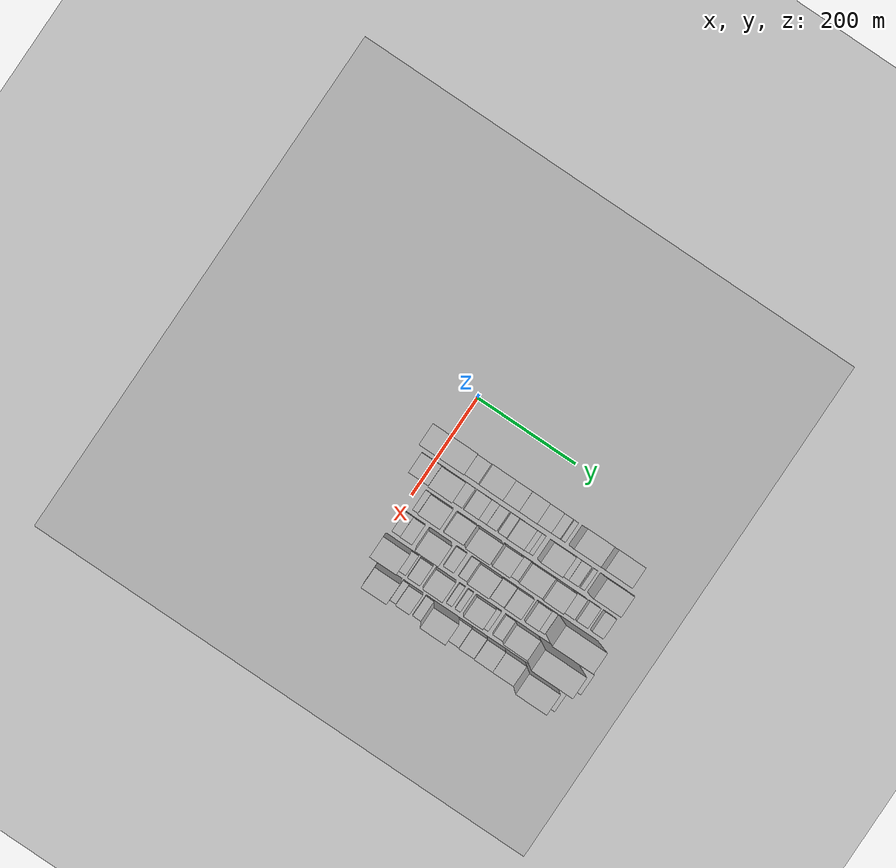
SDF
<sdf version="1.6">
 <world name="default">
  <include><name>ground_plane_1</name><uri>model://HANNAS_ground_plane</uri></include>
  <include>
   <name>ground_plane_2</name>
   <uri>model://HANNAS_ground_plane</uri>
   <pose>100 0 0  0 0 0</pose>
  </include>
  <model name="building_21">
   <static>1</static>
   <pose>100.0000 7.7180 0 0.000000 0.000000 0.000000</pose>
   <link name="link">
    <pose>0 0 112.50 0 0 0</pose>
    <collision name="collision"><geometry><box><size>40.0000 85.6436 225.0000</size></box></geometry></collision>
    <visual name="visual">
     <cast_shadows>0</cast_shadows>
     <geometry><box><size>40.0000 85.6436 225.0000</size></box></geometry>
     <material>
      <script>
       <uri>model://HANNAS_wall/materials/scripts</uri>
       <uri>model://HANNAS_wall/materials/textures</uri>
       <name>vrc/HANNAS_wall</name>
      </script>
     </material>
    </visual>
   </link>
  </model>
  <model name="building_22">
   <static>1</static>
   <pose>100.0000 67.5564 0 0.000000 0.000000 0.000000</pose>
   <link name="link">
    <pose>0 0 27.00 0 0 0</pose>
    <collision name="collision"><geometry><box><size>40.0000 28.0332 54.0000</size></box></geometry></collision>
    <visual name="visual">
     <cast_shadows>0</cast_shadows>
     <geometry><box><size>40.0000 28.0332 54.0000</size></box></geometry>
     <material>
      <script>
       <uri>model://HANNAS_wall/materials/scripts</uri>
       <uri>model://HANNAS_wall/materials/textures</uri>
       <name>vrc/HANNAS_wall</name>
      </script>
     </material>
    </visual>
   </link>
  </model>
  <model name="building_23">
   <static>1</static>
   <pose>100.0000 104.6432 0 0.000000 0.000000 0.000000</pose>
   <link name="link">
    <pose>0 0 67.50 0 0 0</pose>
    <collision name="collision"><geometry><box><size>40.0000 46.1405 135.0000</size></box></geometry></collision>
    <visual name="visual">
     <cast_shadows>0</cast_shadows>
     <geometry><box><size>40.0000 46.1405 135.0000</size></box></geometry>
     <material>
      <script>
       <uri>model://HANNAS_wall/materials/scripts</uri>
       <uri>model://HANNAS_wall/materials/textures</uri>
       <name>vrc/HANNAS_wall</name>
      </script>
     </material>
    </visual>
   </link>
  </model>
  <model name="building_24">
   <static>1</static>
   <pose>100.0000 144.3165 0 0.000000 0.000000 0.000000</pose>
   <link name="link">
    <pose>0 0 54.00 0 0 0</pose>
    <collision name="collision"><geometry><box><size>40.0000 33.2061 108.0000</size></box></geometry></collision>
    <visual name="visual">
     <cast_shadows>0</cast_shadows>
     <geometry><box><size>40.0000 33.2061 108.0000</size></box></geometry>
     <material>
      <script>
       <uri>model://HANNAS_wall/materials/scripts</uri>
       <uri>model://HANNAS_wall/materials/textures</uri>
       <name>vrc/HANNAS_wall</name>
      </script>
     </material>
    </visual>
   </link>
  </model>
  <model name="building_25">
   <static>1</static>
   <pose>100.0000 178.6561 0 0.000000 0.000000 0.000000</pose>
   <link name="link">
    <pose>0 0 55.50 0 0 0</pose>
    <collision name="collision"><geometry><box><size>40.0000 35.4731 111.0000</size></box></geometry></collision>
    <visual name="visual">
     <cast_shadows>0</cast_shadows>
     <geometry><box><size>40.0000 35.4731 111.0000</size></box></geometry>
     <material>
      <script>
       <uri>model://HANNAS_wall/materials/scripts</uri>
       <uri>model://HANNAS_wall/materials/textures</uri>
       <name>vrc/HANNAS_wall</name>
      </script>
     </material>
    </visual>
   </link>
  </model>
  <model name="building_26">
   <static>1</static>
   <pose>100.0000 212.2045 0 0.000000 0.000000 0.000000</pose>
   <link name="link">
    <pose>0 0 30.00 0 0 0</pose>
    <collision name="collision"><geometry><box><size>40.0000 31.6237 60.0000</size></box></geometry></collision>
    <visual name="visual">
     <cast_shadows>0</cast_shadows>
     <geometry><box><size>40.0000 31.6237 60.0000</size></box></geometry>
     <material>
      <script>
       <uri>model://HANNAS_wall/materials/scripts</uri>
       <uri>model://HANNAS_wall/materials/textures</uri>
       <name>vrc/HANNAS_wall</name>
      </script>
     </material>
    </visual>
   </link>
  </model>
  <model name="building_27">
   <static>1</static>
   <pose>100.0000 237.7429 0 0.000000 0.000000 0.000000</pose>
   <link name="link">
    <pose>0 0 18.00 0 0 0</pose>
    <collision name="collision"><geometry><box><size>40.0000 19.4531 36.0000</size></box></geometry></collision>
    <visual name="visual">
     <cast_shadows>0</cast_shadows>
     <geometry><box><size>40.0000 19.4531 36.0000</size></box></geometry>
     <material>
      <script>
       <uri>model://HANNAS_wall/materials/scripts</uri>
       <uri>model://HANNAS_wall/materials/textures</uri>
       <name>vrc/HANNAS_wall</name>
      </script>
     </material>
    </visual>
   </link>
  </model>
  <model name="building_28">
   <static>1</static>
   <pose>100.0000 254.9642 0 0.000000 0.000000 0.000000</pose>
   <link name="link">
    <pose>0 0 9.00 0 0 0</pose>
    <collision name="collision"><geometry><box><size>40.0000 8.9894 18.0000</size></box></geometry></collision>
    <visual name="visual">
     <cast_shadows>0</cast_shadows>
     <geometry><box><size>40.0000 8.9894 18.0000</size></box></geometry>
     <material>
      <script>
       <uri>model://HANNAS_wall/materials/scripts</uri>
       <uri>model://HANNAS_wall/materials/textures</uri>
       <name>vrc/HANNAS_wall</name>
      </script>
     </material>
    </visual>
   </link>
  </model>
  <model name="building_29">
   <static>1</static>
   <pose>100.0000 293.9010 0 0.000000 0.000000 0.000000</pose>
   <link name="link">
    <pose>0 0 67.50 0 0 0</pose>
    <collision name="collision"><geometry><box><size>40.0000 52.8842 135.0000</size></box></geometry></collision>
    <visual name="visual">
     <cast_shadows>0</cast_shadows>
     <geometry><box><size>40.0000 52.8842 135.0000</size></box></geometry>
     <material>
      <script>
       <uri>model://HANNAS_wall/materials/scripts</uri>
       <uri>model://HANNAS_wall/materials/textures</uri>
       <name>vrc/HANNAS_wall</name>
      </script>
     </material>
    </visual>
   </link>
  </model>
  <model name="building_30">
   <static>1</static>
   <pose>100.0000 355.6914 0 0.000000 0.000000 0.000000</pose>
   <link name="link">
    <pose>0 0 66.00 0 0 0</pose>
    <collision name="collision"><geometry><box><size>40.0000 52.6967 132.0000</size></box></geometry></collision>
    <visual name="visual">
     <cast_shadows>0</cast_shadows>
     <geometry><box><size>40.0000 52.6967 132.0000</size></box></geometry>
     <material>
      <script>
       <uri>model://HANNAS_wall/materials/scripts</uri>
       <uri>model://HANNAS_wall/materials/textures</uri>
       <name>vrc/HANNAS_wall</name>
      </script>
     </material>
    </visual>
   </link>
  </model>
  <model name="building_66">
   <static>1</static>
   <pose>149.0000 -5.5144 0 0.000000 0.000000 0.000000</pose>
   <link name="link">
    <pose>0 0 36.00 0 0 0</pose>
    <collision name="collision"><geometry><box><size>40.0000 39.9262 72.0000</size></box></geometry></collision>
    <visual name="visual">
     <cast_shadows>0</cast_shadows>
     <geometry><box><size>40.0000 39.9262 72.0000</size></box></geometry>
     <material>
      <script>
       <uri>model://HANNAS_wall/materials/scripts</uri>
       <uri>model://HANNAS_wall/materials/textures</uri>
       <name>vrc/HANNAS_wall</name>
      </script>
     </material>
    </visual>
   </link>
  </model>
  <model name="building_67">
   <static>1</static>
   <pose>149.0000 37.9203 0 0.000000 0.000000 0.000000</pose>
   <link name="link">
    <pose>0 0 73.50 0 0 0</pose>
    <collision name="collision"><geometry><box><size>40.0000 46.9433 147.0000</size></box></geometry></collision>
    <visual name="visual">
     <cast_shadows>0</cast_shadows>
     <geometry><box><size>40.0000 46.9433 147.0000</size></box></geometry>
     <material>
      <script>
       <uri>model://HANNAS_wall/materials/scripts</uri>
       <uri>model://HANNAS_wall/materials/textures</uri>
       <name>vrc/HANNAS_wall</name>
      </script>
     </material>
    </visual>
   </link>
  </model>
  <model name="building_68">
   <static>1</static>
   <pose>149.0000 71.8959 0 0.000000 0.000000 0.000000</pose>
   <link name="link">
    <pose>0 0 19.50 0 0 0</pose>
    <collision name="collision"><geometry><box><size>40.0000 21.0079 39.0000</size></box></geometry></collision>
    <visual name="visual">
     <cast_shadows>0</cast_shadows>
     <geometry><box><size>40.0000 21.0079 39.0000</size></box></geometry>
     <material>
      <script>
       <uri>model://HANNAS_wall/materials/scripts</uri>
       <uri>model://HANNAS_wall/materials/textures</uri>
       <name>vrc/HANNAS_wall</name>
      </script>
     </material>
    </visual>
   </link>
  </model>
  <model name="building_69">
   <static>1</static>
   <pose>149.0000 100.2830 0 0.000000 0.000000 0.000000</pose>
   <link name="link">
    <pose>0 0 27.00 0 0 0</pose>
    <collision name="collision"><geometry><box><size>40.0000 29.7663 54.0000</size></box></geometry></collision>
    <visual name="visual">
     <cast_shadows>0</cast_shadows>
     <geometry><box><size>40.0000 29.7663 54.0000</size></box></geometry>
     <material>
      <script>
       <uri>model://HANNAS_wall/materials/scripts</uri>
       <uri>model://HANNAS_wall/materials/textures</uri>
       <name>vrc/HANNAS_wall</name>
      </script>
     </material>
    </visual>
   </link>
  </model>
  <model name="building_70">
   <static>1</static>
   <pose>149.0000 123.4607 0 0.000000 0.000000 0.000000</pose>
   <link name="link">
    <pose>0 0 16.50 0 0 0</pose>
    <collision name="collision"><geometry><box><size>40.0000 16.5891 33.0000</size></box></geometry></collision>
    <visual name="visual">
     <cast_shadows>0</cast_shadows>
     <geometry><box><size>40.0000 16.5891 33.0000</size></box></geometry>
     <material>
      <script>
       <uri>model://HANNAS_wall/materials/scripts</uri>
       <uri>model://HANNAS_wall/materials/textures</uri>
       <name>vrc/HANNAS_wall</name>
      </script>
     </material>
    </visual>
   </link>
  </model>
  <model name="building_71">
   <static>1</static>
   <pose>149.0000 141.8349 0 0.000000 0.000000 0.000000</pose>
   <link name="link">
    <pose>0 0 18.00 0 0 0</pose>
    <collision name="collision"><geometry><box><size>40.0000 20.1593 36.0000</size></box></geometry></collision>
    <visual name="visual">
     <cast_shadows>0</cast_shadows>
     <geometry><box><size>40.0000 20.1593 36.0000</size></box></geometry>
     <material>
      <script>
       <uri>model://HANNAS_wall/materials/scripts</uri>
       <uri>model://HANNAS_wall/materials/textures</uri>
       <name>vrc/HANNAS_wall</name>
      </script>
     </material>
    </visual>
   </link>
  </model>
  <model name="building_72">
   <static>1</static>
   <pose>149.0000 163.6154 0 0.000000 0.000000 0.000000</pose>
   <link name="link">
    <pose>0 0 16.50 0 0 0</pose>
    <collision name="collision"><geometry><box><size>40.0000 17.4017 33.0000</size></box></geometry></collision>
    <visual name="visual">
     <cast_shadows>0</cast_shadows>
     <geometry><box><size>40.0000 17.4017 33.0000</size></box></geometry>
     <material>
      <script>
       <uri>model://HANNAS_wall/materials/scripts</uri>
       <uri>model://HANNAS_wall/materials/textures</uri>
       <name>vrc/HANNAS_wall</name>
      </script>
     </material>
    </visual>
   </link>
  </model>
  <model name="building_73">
   <static>1</static>
   <pose>149.0000 189.3897 0 0.000000 0.000000 0.000000</pose>
   <link name="link">
    <pose>0 0 28.50 0 0 0</pose>
    <collision name="collision"><geometry><box><size>40.0000 34.1471 57.0000</size></box></geometry></collision>
    <visual name="visual">
     <cast_shadows>0</cast_shadows>
     <geometry><box><size>40.0000 34.1471 57.0000</size></box></geometry>
     <material>
      <script>
       <uri>model://HANNAS_wall/materials/scripts</uri>
       <uri>model://HANNAS_wall/materials/textures</uri>
       <name>vrc/HANNAS_wall</name>
      </script>
     </material>
    </visual>
   </link>
  </model>
  <model name="building_74">
   <static>1</static>
   <pose>149.0000 212.2500 0 0.000000 0.000000 0.000000</pose>
   <link name="link">
    <pose>0 0 13.50 0 0 0</pose>
    <collision name="collision"><geometry><box><size>40.0000 11.5734 27.0000</size></box></geometry></collision>
    <visual name="visual">
     <cast_shadows>0</cast_shadows>
     <geometry><box><size>40.0000 11.5734 27.0000</size></box></geometry>
     <material>
      <script>
       <uri>model://HANNAS_wall/materials/scripts</uri>
       <uri>model://HANNAS_wall/materials/textures</uri>
       <name>vrc/HANNAS_wall</name>
      </script>
     </material>
    </visual>
   </link>
  </model>
  <model name="building_75">
   <static>1</static>
   <pose>149.0000 222.2428 0 0.000000 0.000000 0.000000</pose>
   <link name="link">
    <pose>0 0 9.00 0 0 0</pose>
    <collision name="collision"><geometry><box><size>40.0000 8.4123 18.0000</size></box></geometry></collision>
    <visual name="visual">
     <cast_shadows>0</cast_shadows>
     <geometry><box><size>40.0000 8.4123 18.0000</size></box></geometry>
     <material>
      <script>
       <uri>model://HANNAS_wall/materials/scripts</uri>
       <uri>model://HANNAS_wall/materials/textures</uri>
       <name>vrc/HANNAS_wall</name>
      </script>
     </material>
    </visual>
   </link>
  </model>
  <model name="building_76">
   <static>1</static>
   <pose>149.0000 258.2133 0 0.000000 0.000000 0.000000</pose>
   <link name="link">
    <pose>0 0 58.50 0 0 0</pose>
    <collision name="collision"><geometry><box><size>40.0000 43.5285 117.0000</size></box></geometry></collision>
    <visual name="visual">
     <cast_shadows>0</cast_shadows>
     <geometry><box><size>40.0000 43.5285 117.0000</size></box></geometry>
     <material>
      <script>
       <uri>model://HANNAS_wall/materials/scripts</uri>
       <uri>model://HANNAS_wall/materials/textures</uri>
       <name>vrc/HANNAS_wall</name>
      </script>
     </material>
    </visual>
   </link>
  </model>
  <model name="building_77">
   <static>1</static>
   <pose>149.0000 288.9747 0 0.000000 0.000000 0.000000</pose>
   <link name="link">
    <pose>0 0 16.50 0 0 0</pose>
    <collision name="collision"><geometry><box><size>40.0000 17.9943 33.0000</size></box></geometry></collision>
    <visual name="visual">
     <cast_shadows>0</cast_shadows>
     <geometry><box><size>40.0000 17.9943 33.0000</size></box></geometry>
     <material>
      <script>
       <uri>model://HANNAS_wall/materials/scripts</uri>
       <uri>model://HANNAS_wall/materials/textures</uri>
       <name>vrc/HANNAS_wall</name>
      </script>
     </material>
    </visual>
   </link>
  </model>
  <model name="building_78">
   <static>1</static>
   <pose>149.0000 307.7852 0 0.000000 0.000000 0.000000</pose>
   <link name="link">
    <pose>0 0 18.00 0 0 0</pose>
    <collision name="collision"><geometry><box><size>40.0000 19.6269 36.0000</size></box></geometry></collision>
    <visual name="visual">
     <cast_shadows>0</cast_shadows>
     <geometry><box><size>40.0000 19.6269 36.0000</size></box></geometry>
     <material>
      <script>
       <uri>model://HANNAS_wall/materials/scripts</uri>
       <uri>model://HANNAS_wall/materials/textures</uri>
       <name>vrc/HANNAS_wall</name>
      </script>
     </material>
    </visual>
   </link>
  </model>
  <model name="building_79">
   <static>1</static>
   <pose>149.0000 326.9042 0 0.000000 0.000000 0.000000</pose>
   <link name="link">
    <pose>0 0 10.50 0 0 0</pose>
    <collision name="collision"><geometry><box><size>40.0000 8.6111 21.0000</size></box></geometry></collision>
    <visual name="visual">
     <cast_shadows>0</cast_shadows>
     <geometry><box><size>40.0000 8.6111 21.0000</size></box></geometry>
     <material>
      <script>
       <uri>model://HANNAS_wall/materials/scripts</uri>
       <uri>model://HANNAS_wall/materials/textures</uri>
       <name>vrc/HANNAS_wall</name>
      </script>
     </material>
    </visual>
   </link>
  </model>
  <model name="building_80">
   <static>1</static>
   <pose>149.0000 364.9617 0 0.000000 0.000000 0.000000</pose>
   <link name="link">
    <pose>0 0 72.00 0 0 0</pose>
    <collision name="collision"><geometry><box><size>40.0000 53.5039 144.0000</size></box></geometry></collision>
    <visual name="visual">
     <cast_shadows>0</cast_shadows>
     <geometry><box><size>40.0000 53.5039 144.0000</size></box></geometry>
     <material>
      <script>
       <uri>model://HANNAS_wall/materials/scripts</uri>
       <uri>model://HANNAS_wall/materials/textures</uri>
       <name>vrc/HANNAS_wall</name>
      </script>
     </material>
    </visual>
   </link>
  </model>
  <model name="building_81">
   <static>1</static>
   <pose>149.0000 400.6756 0 0.000000 0.000000 0.000000</pose>
   <link name="link">
    <pose>0 0 10.50 0 0 0</pose>
    <collision name="collision"><geometry><box><size>40.0000 9.9239 21.0000</size></box></geometry></collision>
    <visual name="visual">
     <cast_shadows>0</cast_shadows>
     <geometry><box><size>40.0000 9.9239 21.0000</size></box></geometry>
     <material>
      <script>
       <uri>model://HANNAS_wall/materials/scripts</uri>
       <uri>model://HANNAS_wall/materials/textures</uri>
       <name>vrc/HANNAS_wall</name>
      </script>
     </material>
    </visual>
   </link>
  </model>
  <model name="building_116">
   <static>1</static>
   <pose>198.0000 20.4674 0 0.000000 0.000000 0.000000</pose>
   <link name="link">
    <pose>0 0 12.00 0 0 0</pose>
    <collision name="collision"><geometry><box><size>40.0000 11.0760 24.0000</size></box></geometry></collision>
    <visual name="visual">
     <cast_shadows>0</cast_shadows>
     <geometry><box><size>40.0000 11.0760 24.0000</size></box></geometry>
     <material>
      <script>
       <uri>model://HANNAS_wall/materials/scripts</uri>
       <uri>model://HANNAS_wall/materials/textures</uri>
       <name>vrc/HANNAS_wall</name>
      </script>
     </material>
    </visual>
   </link>
  </model>
  <model name="building_117">
   <static>1</static>
   <pose>198.0000 48.2510 0 0.000000 0.000000 0.000000</pose>
   <link name="link">
    <pose>0 0 39.00 0 0 0</pose>
    <collision name="collision"><geometry><box><size>40.0000 44.4912 78.0000</size></box></geometry></collision>
    <visual name="visual">
     <cast_shadows>0</cast_shadows>
     <geometry><box><size>40.0000 44.4912 78.0000</size></box></geometry>
     <material>
      <script>
       <uri>model://HANNAS_wall/materials/scripts</uri>
       <uri>model://HANNAS_wall/materials/textures</uri>
       <name>vrc/HANNAS_wall</name>
      </script>
     </material>
    </visual>
   </link>
  </model>
  <model name="building_118">
   <static>1</static>
   <pose>198.0000 98.2552 0 0.000000 0.000000 0.000000</pose>
   <link name="link">
    <pose>0 0 37.50 0 0 0</pose>
    <collision name="collision"><geometry><box><size>40.0000 39.5170 75.0000</size></box></geometry></collision>
    <visual name="visual">
     <cast_shadows>0</cast_shadows>
     <geometry><box><size>40.0000 39.5170 75.0000</size></box></geometry>
     <material>
      <script>
       <uri>model://HANNAS_wall/materials/scripts</uri>
       <uri>model://HANNAS_wall/materials/textures</uri>
       <name>vrc/HANNAS_wall</name>
      </script>
     </material>
    </visual>
   </link>
  </model>
  <model name="building_119">
   <static>1</static>
   <pose>198.0000 144.7241 0 0.000000 0.000000 0.000000</pose>
   <link name="link">
    <pose>0 0 70.50 0 0 0</pose>
    <collision name="collision"><geometry><box><size>40.0000 47.4208 141.0000</size></box></geometry></collision>
    <visual name="visual">
     <cast_shadows>0</cast_shadows>
     <geometry><box><size>40.0000 47.4208 141.0000</size></box></geometry>
     <material>
      <script>
       <uri>model://HANNAS_wall/materials/scripts</uri>
       <uri>model://HANNAS_wall/materials/textures</uri>
       <name>vrc/HANNAS_wall</name>
      </script>
     </material>
    </visual>
   </link>
  </model>
  <model name="building_120">
   <static>1</static>
   <pose>198.0000 191.6738 0 0.000000 0.000000 0.000000</pose>
   <link name="link">
    <pose>0 0 57.00 0 0 0</pose>
    <collision name="collision"><geometry><box><size>40.0000 34.4785 114.0000</size></box></geometry></collision>
    <visual name="visual">
     <cast_shadows>0</cast_shadows>
     <geometry><box><size>40.0000 34.4785 114.0000</size></box></geometry>
     <material>
      <script>
       <uri>model://HANNAS_wall/materials/scripts</uri>
       <uri>model://HANNAS_wall/materials/textures</uri>
       <name>vrc/HANNAS_wall</name>
      </script>
     </material>
    </visual>
   </link>
  </model>
  <model name="building_121">
   <static>1</static>
   <pose>198.0000 218.9628 0 0.000000 0.000000 0.000000</pose>
   <link name="link">
    <pose>0 0 18.00 0 0 0</pose>
    <collision name="collision"><geometry><box><size>40.0000 20.0996 36.0000</size></box></geometry></collision>
    <visual name="visual">
     <cast_shadows>0</cast_shadows>
     <geometry><box><size>40.0000 20.0996 36.0000</size></box></geometry>
     <material>
      <script>
       <uri>model://HANNAS_wall/materials/scripts</uri>
       <uri>model://HANNAS_wall/materials/textures</uri>
       <name>vrc/HANNAS_wall</name>
      </script>
     </material>
    </visual>
   </link>
  </model>
  <model name="building_122">
   <static>1</static>
   <pose>198.0000 252.0391 0 0.000000 0.000000 0.000000</pose>
   <link name="link">
    <pose>0 0 40.50 0 0 0</pose>
    <collision name="collision"><geometry><box><size>40.0000 46.0528 81.0000</size></box></geometry></collision>
    <visual name="visual">
     <cast_shadows>0</cast_shadows>
     <geometry><box><size>40.0000 46.0528 81.0000</size></box></geometry>
     <material>
      <script>
       <uri>model://HANNAS_wall/materials/scripts</uri>
       <uri>model://HANNAS_wall/materials/textures</uri>
       <name>vrc/HANNAS_wall</name>
      </script>
     </material>
    </visual>
   </link>
  </model>
  <model name="building_123">
   <static>1</static>
   <pose>198.0000 294.8490 0 0.000000 0.000000 0.000000</pose>
   <link name="link">
    <pose>0 0 58.50 0 0 0</pose>
    <collision name="collision"><geometry><box><size>40.0000 39.5671 117.0000</size></box></geometry></collision>
    <visual name="visual">
     <cast_shadows>0</cast_shadows>
     <geometry><box><size>40.0000 39.5671 117.0000</size></box></geometry>
     <material>
      <script>
       <uri>model://HANNAS_wall/materials/scripts</uri>
       <uri>model://HANNAS_wall/materials/textures</uri>
       <name>vrc/HANNAS_wall</name>
      </script>
     </material>
    </visual>
   </link>
  </model>
  <model name="building_124">
   <static>1</static>
   <pose>198.0000 328.3532 0 0.000000 0.000000 0.000000</pose>
   <link name="link">
    <pose>0 0 24.00 0 0 0</pose>
    <collision name="collision"><geometry><box><size>40.0000 27.4412 48.0000</size></box></geometry></collision>
    <visual name="visual">
     <cast_shadows>0</cast_shadows>
     <geometry><box><size>40.0000 27.4412 48.0000</size></box></geometry>
     <material>
      <script>
       <uri>model://HANNAS_wall/materials/scripts</uri>
       <uri>model://HANNAS_wall/materials/textures</uri>
       <name>vrc/HANNAS_wall</name>
      </script>
     </material>
    </visual>
   </link>
  </model>
  <model name="building_125">
   <static>1</static>
   <pose>198.0000 358.3124 0 0.000000 0.000000 0.000000</pose>
   <link name="link">
    <pose>0 0 19.50 0 0 0</pose>
    <collision name="collision"><geometry><box><size>40.0000 22.4773 39.0000</size></box></geometry></collision>
    <visual name="visual">
     <cast_shadows>0</cast_shadows>
     <geometry><box><size>40.0000 22.4773 39.0000</size></box></geometry>
     <material>
      <script>
       <uri>model://HANNAS_wall/materials/scripts</uri>
       <uri>model://HANNAS_wall/materials/textures</uri>
       <name>vrc/HANNAS_wall</name>
      </script>
     </material>
    </visual>
   </link>
  </model>
  <model name="building_126">
   <static>1</static>
   <pose>198.0000 389.0401 0 0.000000 0.000000 0.000000</pose>
   <link name="link">
    <pose>0 0 21.00 0 0 0</pose>
    <collision name="collision"><geometry><box><size>40.0000 22.9780 42.0000</size></box></geometry></collision>
    <visual name="visual">
     <cast_shadows>0</cast_shadows>
     <geometry><box><size>40.0000 22.9780 42.0000</size></box></geometry>
     <material>
      <script>
       <uri>model://HANNAS_wall/materials/scripts</uri>
       <uri>model://HANNAS_wall/materials/textures</uri>
       <name>vrc/HANNAS_wall</name>
      </script>
     </material>
    </visual>
   </link>
  </model>
  <model name="building_162">
   <static>1</static>
   <pose>247.0000 14.8649 0 0.000000 0.000000 0.000000</pose>
   <link name="link">
    <pose>0 0 16.50 0 0 0</pose>
    <collision name="collision"><geometry><box><size>40.0000 17.1173 33.0000</size></box></geometry></collision>
    <visual name="visual">
     <cast_shadows>0</cast_shadows>
     <geometry><box><size>40.0000 17.1173 33.0000</size></box></geometry>
     <material>
      <script>
       <uri>model://HANNAS_wall/materials/scripts</uri>
       <uri>model://HANNAS_wall/materials/textures</uri>
       <name>vrc/HANNAS_wall</name>
      </script>
     </material>
    </visual>
   </link>
  </model>
  <model name="building_163">
   <static>1</static>
   <pose>247.0000 35.3036 0 0.000000 0.000000 0.000000</pose>
   <link name="link">
    <pose>0 0 21.00 0 0 0</pose>
    <collision name="collision"><geometry><box><size>40.0000 23.7601 42.0000</size></box></geometry></collision>
    <visual name="visual">
     <cast_shadows>0</cast_shadows>
     <geometry><box><size>40.0000 23.7601 42.0000</size></box></geometry>
     <material>
      <script>
       <uri>model://HANNAS_wall/materials/scripts</uri>
       <uri>model://HANNAS_wall/materials/textures</uri>
       <name>vrc/HANNAS_wall</name>
      </script>
     </material>
    </visual>
   </link>
  </model>
  <model name="building_164">
   <static>1</static>
   <pose>247.0000 77.8672 0 0.000000 0.000000 0.000000</pose>
   <link name="link">
    <pose>0 0 73.50 0 0 0</pose>
    <collision name="collision"><geometry><box><size>40.0000 45.3671 147.0000</size></box></geometry></collision>
    <visual name="visual">
     <cast_shadows>0</cast_shadows>
     <geometry><box><size>40.0000 45.3671 147.0000</size></box></geometry>
     <material>
      <script>
       <uri>model://HANNAS_wall/materials/scripts</uri>
       <uri>model://HANNAS_wall/materials/textures</uri>
       <name>vrc/HANNAS_wall</name>
      </script>
     </material>
    </visual>
   </link>
  </model>
  <model name="building_165">
   <static>1</static>
   <pose>247.0000 121.0301 0 0.000000 0.000000 0.000000</pose>
   <link name="link">
    <pose>0 0 19.50 0 0 0</pose>
    <collision name="collision"><geometry><box><size>40.0000 20.9587 39.0000</size></box></geometry></collision>
    <visual name="visual">
     <cast_shadows>0</cast_shadows>
     <geometry><box><size>40.0000 20.9587 39.0000</size></box></geometry>
     <material>
      <script>
       <uri>model://HANNAS_wall/materials/scripts</uri>
       <uri>model://HANNAS_wall/materials/textures</uri>
       <name>vrc/HANNAS_wall</name>
      </script>
     </material>
    </visual>
   </link>
  </model>
  <model name="building_166">
   <static>1</static>
   <pose>247.0000 149.9940 0 0.000000 0.000000 0.000000</pose>
   <link name="link">
    <pose>0 0 15.00 0 0 0</pose>
    <collision name="collision"><geometry><box><size>40.0000 16.9693 30.0000</size></box></geometry></collision>
    <visual name="visual">
     <cast_shadows>0</cast_shadows>
     <geometry><box><size>40.0000 16.9693 30.0000</size></box></geometry>
     <material>
      <script>
       <uri>model://HANNAS_wall/materials/scripts</uri>
       <uri>model://HANNAS_wall/materials/textures</uri>
       <name>vrc/HANNAS_wall</name>
      </script>
     </material>
    </visual>
   </link>
  </model>
  <model name="building_167">
   <static>1</static>
   <pose>247.0000 180.0418 0 0.000000 0.000000 0.000000</pose>
   <link name="link">
    <pose>0 0 42.00 0 0 0</pose>
    <collision name="collision"><geometry><box><size>40.0000 43.1262 84.0000</size></box></geometry></collision>
    <visual name="visual">
     <cast_shadows>0</cast_shadows>
     <geometry><box><size>40.0000 43.1262 84.0000</size></box></geometry>
     <material>
      <script>
       <uri>model://HANNAS_wall/materials/scripts</uri>
       <uri>model://HANNAS_wall/materials/textures</uri>
       <name>vrc/HANNAS_wall</name>
      </script>
     </material>
    </visual>
   </link>
  </model>
  <model name="building_168">
   <static>1</static>
   <pose>247.0000 218.8734 0 0.000000 0.000000 0.000000</pose>
   <link name="link">
    <pose>0 0 24.00 0 0 0</pose>
    <collision name="collision"><geometry><box><size>40.0000 28.5371 48.0000</size></box></geometry></collision>
    <visual name="visual">
     <cast_shadows>0</cast_shadows>
     <geometry><box><size>40.0000 28.5371 48.0000</size></box></geometry>
     <material>
      <script>
       <uri>model://HANNAS_wall/materials/scripts</uri>
       <uri>model://HANNAS_wall/materials/textures</uri>
       <name>vrc/HANNAS_wall</name>
      </script>
     </material>
    </visual>
   </link>
  </model>
  <model name="building_169">
   <static>1</static>
   <pose>247.0000 249.9482 0 0.000000 0.000000 0.000000</pose>
   <link name="link">
    <pose>0 0 31.50 0 0 0</pose>
    <collision name="collision"><geometry><box><size>40.0000 33.6125 63.0000</size></box></geometry></collision>
    <visual name="visual">
     <cast_shadows>0</cast_shadows>
     <geometry><box><size>40.0000 33.6125 63.0000</size></box></geometry>
     <material>
      <script>
       <uri>model://HANNAS_wall/materials/scripts</uri>
       <uri>model://HANNAS_wall/materials/textures</uri>
       <name>vrc/HANNAS_wall</name>
      </script>
     </material>
    </visual>
   </link>
  </model>
  <model name="building_170">
   <static>1</static>
   <pose>247.0000 289.3841 0 0.000000 0.000000 0.000000</pose>
   <link name="link">
    <pose>0 0 25.50 0 0 0</pose>
    <collision name="collision"><geometry><box><size>40.0000 27.2592 51.0000</size></box></geometry></collision>
    <visual name="visual">
     <cast_shadows>0</cast_shadows>
     <geometry><box><size>40.0000 27.2592 51.0000</size></box></geometry>
     <material>
      <script>
       <uri>model://HANNAS_wall/materials/scripts</uri>
       <uri>model://HANNAS_wall/materials/textures</uri>
       <name>vrc/HANNAS_wall</name>
      </script>
     </material>
    </visual>
   </link>
  </model>
  <model name="building_171">
   <static>1</static>
   <pose>247.0000 309.7288 0 0.000000 0.000000 0.000000</pose>
   <link name="link">
    <pose>0 0 13.50 0 0 0</pose>
    <collision name="collision"><geometry><box><size>40.0000 13.4303 27.0000</size></box></geometry></collision>
    <visual name="visual">
     <cast_shadows>0</cast_shadows>
     <geometry><box><size>40.0000 13.4303 27.0000</size></box></geometry>
     <material>
      <script>
       <uri>model://HANNAS_wall/materials/scripts</uri>
       <uri>model://HANNAS_wall/materials/textures</uri>
       <name>vrc/HANNAS_wall</name>
      </script>
     </material>
    </visual>
   </link>
  </model>
  <model name="building_172">
   <static>1</static>
   <pose>247.0000 359.0023 0 0.000000 0.000000 0.000000</pose>
   <link name="link">
    <pose>0 0 100.50 0 0 0</pose>
    <collision name="collision"><geometry><box><size>40.0000 79.1168 201.0000</size></box></geometry></collision>
    <visual name="visual">
     <cast_shadows>0</cast_shadows>
     <geometry><box><size>40.0000 79.1168 201.0000</size></box></geometry>
     <material>
      <script>
       <uri>model://HANNAS_wall/materials/scripts</uri>
       <uri>model://HANNAS_wall/materials/textures</uri>
       <name>vrc/HANNAS_wall</name>
      </script>
     </material>
    </visual>
   </link>
  </model>
  <model name="building_214">
   <static>1</static>
   <pose>296.0000 25.7202 0 0.000000 0.000000 0.000000</pose>
   <link name="link">
    <pose>0 0 72.00 0 0 0</pose>
    <collision name="collision"><geometry><box><size>40.0000 51.9804 144.0000</size></box></geometry></collision>
    <visual name="visual">
     <cast_shadows>0</cast_shadows>
     <geometry><box><size>40.0000 51.9804 144.0000</size></box></geometry>
     <material>
      <script>
       <uri>model://HANNAS_wall/materials/scripts</uri>
       <uri>model://HANNAS_wall/materials/textures</uri>
       <name>vrc/HANNAS_wall</name>
      </script>
     </material>
    </visual>
   </link>
  </model>
  <model name="building_215">
   <static>1</static>
   <pose>296.0000 59.5621 0 0.000000 0.000000 0.000000</pose>
   <link name="link">
    <pose>0 0 15.00 0 0 0</pose>
    <collision name="collision"><geometry><box><size>40.0000 15.7033 30.0000</size></box></geometry></collision>
    <visual name="visual">
     <cast_shadows>0</cast_shadows>
     <geometry><box><size>40.0000 15.7033 30.0000</size></box></geometry>
     <material>
      <script>
       <uri>model://HANNAS_wall/materials/scripts</uri>
       <uri>model://HANNAS_wall/materials/textures</uri>
       <name>vrc/HANNAS_wall</name>
      </script>
     </material>
    </visual>
   </link>
  </model>
  <model name="building_216">
   <static>1</static>
   <pose>296.0000 83.8780 0 0.000000 0.000000 0.000000</pose>
   <link name="link">
    <pose>0 0 24.00 0 0 0</pose>
    <collision name="collision"><geometry><box><size>40.0000 24.9285 48.0000</size></box></geometry></collision>
    <visual name="visual">
     <cast_shadows>0</cast_shadows>
     <geometry><box><size>40.0000 24.9285 48.0000</size></box></geometry>
     <material>
      <script>
       <uri>model://HANNAS_wall/materials/scripts</uri>
       <uri>model://HANNAS_wall/materials/textures</uri>
       <name>vrc/HANNAS_wall</name>
      </script>
     </material>
    </visual>
   </link>
  </model>
  <model name="building_217">
   <static>1</static>
   <pose>296.0000 122.1025 0 0.000000 0.000000 0.000000</pose>
   <link name="link">
    <pose>0 0 37.50 0 0 0</pose>
    <collision name="collision"><geometry><box><size>40.0000 39.5205 75.0000</size></box></geometry></collision>
    <visual name="visual">
     <cast_shadows>0</cast_shadows>
     <geometry><box><size>40.0000 39.5205 75.0000</size></box></geometry>
     <material>
      <script>
       <uri>model://HANNAS_wall/materials/scripts</uri>
       <uri>model://HANNAS_wall/materials/textures</uri>
       <name>vrc/HANNAS_wall</name>
      </script>
     </material>
    </visual>
   </link>
  </model>
  <model name="building_218">
   <static>1</static>
   <pose>296.0000 155.6376 0 0.000000 0.000000 0.000000</pose>
   <link name="link">
    <pose>0 0 12.00 0 0 0</pose>
    <collision name="collision"><geometry><box><size>40.0000 11.5498 24.0000</size></box></geometry></collision>
    <visual name="visual">
     <cast_shadows>0</cast_shadows>
     <geometry><box><size>40.0000 11.5498 24.0000</size></box></geometry>
     <material>
      <script>
       <uri>model://HANNAS_wall/materials/scripts</uri>
       <uri>model://HANNAS_wall/materials/textures</uri>
       <name>vrc/HANNAS_wall</name>
      </script>
     </material>
    </visual>
   </link>
  </model>
  <model name="building_219">
   <static>1</static>
   <pose>296.0000 172.8524 0 0.000000 0.000000 0.000000</pose>
   <link name="link">
    <pose>0 0 12.00 0 0 0</pose>
    <collision name="collision"><geometry><box><size>40.0000 10.8798 24.0000</size></box></geometry></collision>
    <visual name="visual">
     <cast_shadows>0</cast_shadows>
     <geometry><box><size>40.0000 10.8798 24.0000</size></box></geometry>
     <material>
      <script>
       <uri>model://HANNAS_wall/materials/scripts</uri>
       <uri>model://HANNAS_wall/materials/textures</uri>
       <name>vrc/HANNAS_wall</name>
      </script>
     </material>
    </visual>
   </link>
  </model>
  <model name="building_220">
   <static>1</static>
   <pose>296.0000 203.5890 0 0.000000 0.000000 0.000000</pose>
   <link name="link">
    <pose>0 0 34.50 0 0 0</pose>
    <collision name="collision"><geometry><box><size>40.0000 38.5934 69.0000</size></box></geometry></collision>
    <visual name="visual">
     <cast_shadows>0</cast_shadows>
     <geometry><box><size>40.0000 38.5934 69.0000</size></box></geometry>
     <material>
      <script>
       <uri>model://HANNAS_wall/materials/scripts</uri>
       <uri>model://HANNAS_wall/materials/textures</uri>
       <name>vrc/HANNAS_wall</name>
      </script>
     </material>
    </visual>
   </link>
  </model>
  <model name="building_221">
   <static>1</static>
   <pose>296.0000 228.9687 0 0.000000 0.000000 0.000000</pose>
   <link name="link">
    <pose>0 0 13.50 0 0 0</pose>
    <collision name="collision"><geometry><box><size>40.0000 12.1661 27.0000</size></box></geometry></collision>
    <visual name="visual">
     <cast_shadows>0</cast_shadows>
     <geometry><box><size>40.0000 12.1661 27.0000</size></box></geometry>
     <material>
      <script>
       <uri>model://HANNAS_wall/materials/scripts</uri>
       <uri>model://HANNAS_wall/materials/textures</uri>
       <name>vrc/HANNAS_wall</name>
      </script>
     </material>
    </visual>
   </link>
  </model>
  <model name="building_222">
   <static>1</static>
   <pose>296.0000 253.7210 0 0.000000 0.000000 0.000000</pose>
   <link name="link">
    <pose>0 0 16.50 0 0 0</pose>
    <collision name="collision"><geometry><box><size>40.0000 19.3385 33.0000</size></box></geometry></collision>
    <visual name="visual">
     <cast_shadows>0</cast_shadows>
     <geometry><box><size>40.0000 19.3385 33.0000</size></box></geometry>
     <material>
      <script>
       <uri>model://HANNAS_wall/materials/scripts</uri>
       <uri>model://HANNAS_wall/materials/textures</uri>
       <name>vrc/HANNAS_wall</name>
      </script>
     </material>
    </visual>
   </link>
  </model>
  <model name="building_223">
   <static>1</static>
   <pose>296.0000 287.1692 0 0.000000 0.000000 0.000000</pose>
   <link name="link">
    <pose>0 0 45.00 0 0 0</pose>
    <collision name="collision"><geometry><box><size>40.0000 47.5577 90.0000</size></box></geometry></collision>
    <visual name="visual">
     <cast_shadows>0</cast_shadows>
     <geometry><box><size>40.0000 47.5577 90.0000</size></box></geometry>
     <material>
      <script>
       <uri>model://HANNAS_wall/materials/scripts</uri>
       <uri>model://HANNAS_wall/materials/textures</uri>
       <name>vrc/HANNAS_wall</name>
      </script>
     </material>
    </visual>
   </link>
  </model>
  <model name="building_224">
   <static>1</static>
   <pose>296.0000 350.4895 0 0.000000 0.000000 0.000000</pose>
   <link name="link">
    <pose>0 0 112.50 0 0 0</pose>
    <collision name="collision"><geometry><box><size>40.0000 79.0831 225.0000</size></box></geometry></collision>
    <visual name="visual">
     <cast_shadows>0</cast_shadows>
     <geometry><box><size>40.0000 79.0831 225.0000</size></box></geometry>
     <material>
      <script>
       <uri>model://HANNAS_wall/materials/scripts</uri>
       <uri>model://HANNAS_wall/materials/textures</uri>
       <name>vrc/HANNAS_wall</name>
      </script>
     </material>
    </visual>
   </link>
  </model>
  <model name="building_225">
   <static>1</static>
   <pose>296.0000 408.0934 0 0.000000 0.000000 0.000000</pose>
   <link name="link">
    <pose>0 0 22.50 0 0 0</pose>
    <collision name="collision"><geometry><box><size>40.0000 26.1248 45.0000</size></box></geometry></collision>
    <visual name="visual">
     <cast_shadows>0</cast_shadows>
     <geometry><box><size>40.0000 26.1248 45.0000</size></box></geometry>
     <material>
      <script>
       <uri>model://HANNAS_wall/materials/scripts</uri>
       <uri>model://HANNAS_wall/materials/textures</uri>
       <name>vrc/HANNAS_wall</name>
      </script>
     </material>
    </visual>
   </link>
  </model>
  <model name="building_264">
   <static>1</static>
   <pose>345.0000 40.8774 0 0.000000 0.000000 0.000000</pose>
   <link name="link">
    <pose>0 0 70.50 0 0 0</pose>
    <collision name="collision"><geometry><box><size>40.0000 49.4869 141.0000</size></box></geometry></collision>
    <visual name="visual">
     <cast_shadows>0</cast_shadows>
     <geometry><box><size>40.0000 49.4869 141.0000</size></box></geometry>
     <material>
      <script>
       <uri>model://HANNAS_wall/materials/scripts</uri>
       <uri>model://HANNAS_wall/materials/textures</uri>
       <name>vrc/HANNAS_wall</name>
      </script>
     </material>
    </visual>
   </link>
  </model>
  <model name="building_265">
   <static>1</static>
   <pose>345.0000 74.6195 0 0.000000 0.000000 0.000000</pose>
   <link name="link">
    <pose>0 0 13.50 0 0 0</pose>
    <collision name="collision"><geometry><box><size>40.0000 11.9972 27.0000</size></box></geometry></collision>
    <visual name="visual">
     <cast_shadows>0</cast_shadows>
     <geometry><box><size>40.0000 11.9972 27.0000</size></box></geometry>
     <material>
      <script>
       <uri>model://HANNAS_wall/materials/scripts</uri>
       <uri>model://HANNAS_wall/materials/textures</uri>
       <name>vrc/HANNAS_wall</name>
      </script>
     </material>
    </visual>
   </link>
  </model>
  <model name="building_266">
   <static>1</static>
   <pose>345.0000 94.7022 0 0.000000 0.000000 0.000000</pose>
   <link name="link">
    <pose>0 0 27.00 0 0 0</pose>
    <collision name="collision"><geometry><box><size>40.0000 28.1682 54.0000</size></box></geometry></collision>
    <visual name="visual">
     <cast_shadows>0</cast_shadows>
     <geometry><box><size>40.0000 28.1682 54.0000</size></box></geometry>
     <material>
      <script>
       <uri>model://HANNAS_wall/materials/scripts</uri>
       <uri>model://HANNAS_wall/materials/textures</uri>
       <name>vrc/HANNAS_wall</name>
      </script>
     </material>
    </visual>
   </link>
  </model>
  <model name="building_267">
   <static>1</static>
   <pose>345.0000 123.0963 0 0.000000 0.000000 0.000000</pose>
   <link name="link">
    <pose>0 0 15.00 0 0 0</pose>
    <collision name="collision"><geometry><box><size>40.0000 16.6199 30.0000</size></box></geometry></collision>
    <visual name="visual">
     <cast_shadows>0</cast_shadows>
     <geometry><box><size>40.0000 16.6199 30.0000</size></box></geometry>
     <material>
      <script>
       <uri>model://HANNAS_wall/materials/scripts</uri>
       <uri>model://HANNAS_wall/materials/textures</uri>
       <name>vrc/HANNAS_wall</name>
      </script>
     </material>
    </visual>
   </link>
  </model>
  <model name="building_268">
   <static>1</static>
   <pose>345.0000 156.1551 0 0.000000 0.000000 0.000000</pose>
   <link name="link">
    <pose>0 0 75.00 0 0 0</pose>
    <collision name="collision"><geometry><box><size>40.0000 49.4978 150.0000</size></box></geometry></collision>
    <visual name="visual">
     <cast_shadows>0</cast_shadows>
     <geometry><box><size>40.0000 49.4978 150.0000</size></box></geometry>
     <material>
      <script>
       <uri>model://HANNAS_wall/materials/scripts</uri>
       <uri>model://HANNAS_wall/materials/textures</uri>
       <name>vrc/HANNAS_wall</name>
      </script>
     </material>
    </visual>
   </link>
  </model>
  <model name="building_269">
   <static>1</static>
   <pose>345.0000 194.4836 0 0.000000 0.000000 0.000000</pose>
   <link name="link">
    <pose>0 0 24.00 0 0 0</pose>
    <collision name="collision"><geometry><box><size>40.0000 27.1593 48.0000</size></box></geometry></collision>
    <visual name="visual">
     <cast_shadows>0</cast_shadows>
     <geometry><box><size>40.0000 27.1593 48.0000</size></box></geometry>
     <material>
      <script>
       <uri>model://HANNAS_wall/materials/scripts</uri>
       <uri>model://HANNAS_wall/materials/textures</uri>
       <name>vrc/HANNAS_wall</name>
      </script>
     </material>
    </visual>
   </link>
  </model>
  <model name="building_270">
   <static>1</static>
   <pose>345.0000 223.2668 0 0.000000 0.000000 0.000000</pose>
   <link name="link">
    <pose>0 0 30.00 0 0 0</pose>
    <collision name="collision"><geometry><box><size>40.0000 30.4072 60.0000</size></box></geometry></collision>
    <visual name="visual">
     <cast_shadows>0</cast_shadows>
     <geometry><box><size>40.0000 30.4072 60.0000</size></box></geometry>
     <material>
      <script>
       <uri>model://HANNAS_wall/materials/scripts</uri>
       <uri>model://HANNAS_wall/materials/textures</uri>
       <name>vrc/HANNAS_wall</name>
      </script>
     </material>
    </visual>
   </link>
  </model>
  <model name="building_271">
   <static>1</static>
   <pose>345.0000 256.9150 0 0.000000 0.000000 0.000000</pose>
   <link name="link">
    <pose>0 0 36.00 0 0 0</pose>
    <collision name="collision"><geometry><box><size>40.0000 36.8892 72.0000</size></box></geometry></collision>
    <visual name="visual">
     <cast_shadows>0</cast_shadows>
     <geometry><box><size>40.0000 36.8892 72.0000</size></box></geometry>
     <material>
      <script>
       <uri>model://HANNAS_wall/materials/scripts</uri>
       <uri>model://HANNAS_wall/materials/textures</uri>
       <name>vrc/HANNAS_wall</name>
      </script>
     </material>
    </visual>
   </link>
  </model>
  <model name="building_272">
   <static>1</static>
   <pose>345.0000 296.0464 0 0.000000 0.000000 0.000000</pose>
   <link name="link">
    <pose>0 0 37.50 0 0 0</pose>
    <collision name="collision"><geometry><box><size>40.0000 41.3735 75.0000</size></box></geometry></collision>
    <visual name="visual">
     <cast_shadows>0</cast_shadows>
     <geometry><box><size>40.0000 41.3735 75.0000</size></box></geometry>
     <material>
      <script>
       <uri>model://HANNAS_wall/materials/scripts</uri>
       <uri>model://HANNAS_wall/materials/textures</uri>
       <name>vrc/HANNAS_wall</name>
      </script>
     </material>
    </visual>
   </link>
  </model>
  <model name="building_273">
   <static>1</static>
   <pose>345.0000 346.8366 0 0.000000 0.000000 0.000000</pose>
   <link name="link">
    <pose>0 0 87.00 0 0 0</pose>
    <collision name="collision"><geometry><box><size>40.0000 60.2068 174.0000</size></box></geometry></collision>
    <visual name="visual">
     <cast_shadows>0</cast_shadows>
     <geometry><box><size>40.0000 60.2068 174.0000</size></box></geometry>
     <material>
      <script>
       <uri>model://HANNAS_wall/materials/scripts</uri>
       <uri>model://HANNAS_wall/materials/textures</uri>
       <name>vrc/HANNAS_wall</name>
      </script>
     </material>
    </visual>
   </link>
  </model>
  <model name="building_274">
   <static>1</static>
   <pose>345.0000 394.2722 0 0.000000 0.000000 0.000000</pose>
   <link name="link">
    <pose>0 0 15.00 0 0 0</pose>
    <collision name="collision"><geometry><box><size>40.0000 16.6644 30.0000</size></box></geometry></collision>
    <visual name="visual">
     <cast_shadows>0</cast_shadows>
     <geometry><box><size>40.0000 16.6644 30.0000</size></box></geometry>
     <material>
      <script>
       <uri>model://HANNAS_wall/materials/scripts</uri>
       <uri>model://HANNAS_wall/materials/textures</uri>
       <name>vrc/HANNAS_wall</name>
      </script>
     </material>
    </visual>
   </link>
  </model>
 </world>
</sdf>
